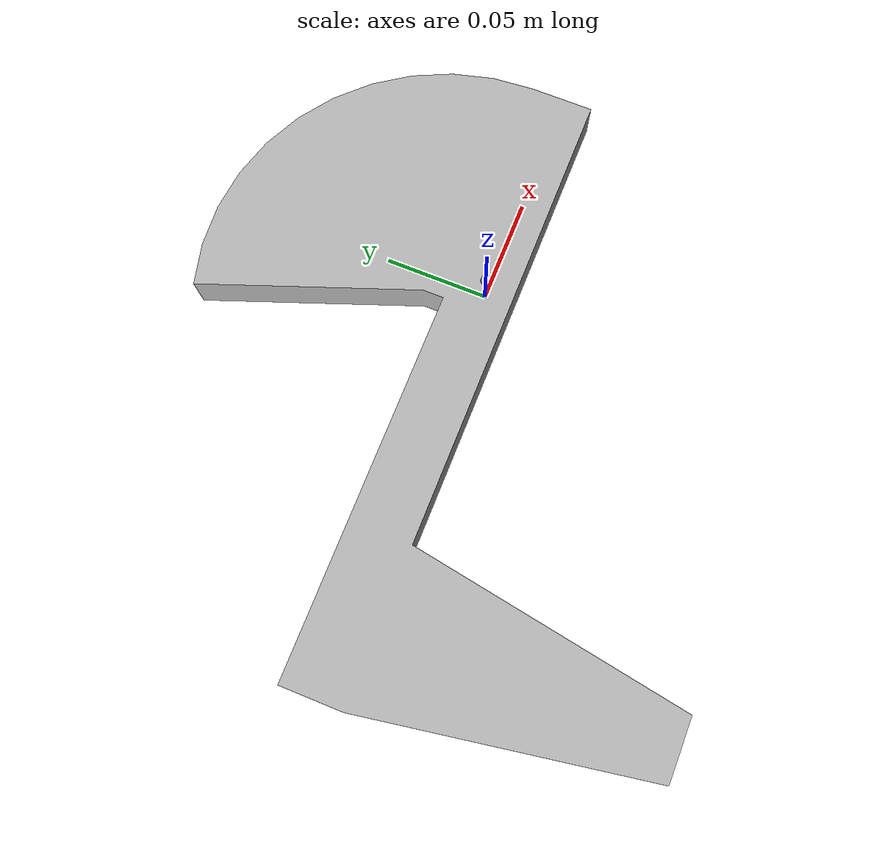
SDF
<?xml version='1.0'?>
<sdf version="1.4">
  <model name="windsock">
    <static>false</static>
    <link name="windsock_link">
      <inertial>
        <pose>-0.0459 -0.01153 0.011</pose>
        <mass>0.350</mass>
        <inertia>
          <ixx>0.00142612</ixx>
          <ixy>0.00139666</ixy>
          <ixz>0</ixz>
          <iyy>0.00299930</iyy>
          <iyz>0</iyz>
          <izz>0.00439720</izz>
        </inertia>
      </inertial>

      <collision name="windsock_collision">
        <pose>-0.20 -0.15 0 0 0 0</pose>
        <geometry>
          <mesh>
            <uri>model://windsock/meshes/windsock.dae</uri>
            <scale>1 1 1 </scale>
          </mesh>
        </geometry>
      </collision>

      <visual name="windsock_visual">
        <pose>-0.20 -0.15 0 0 0 0</pose>
        <geometry>
          <mesh>
            <uri>model://windsock/meshes/windsock.dae</uri>
            <scale>1 1 1 </scale>
          </mesh>
        </geometry>
      </visual>
    </link>
  </model>
</sdf>
